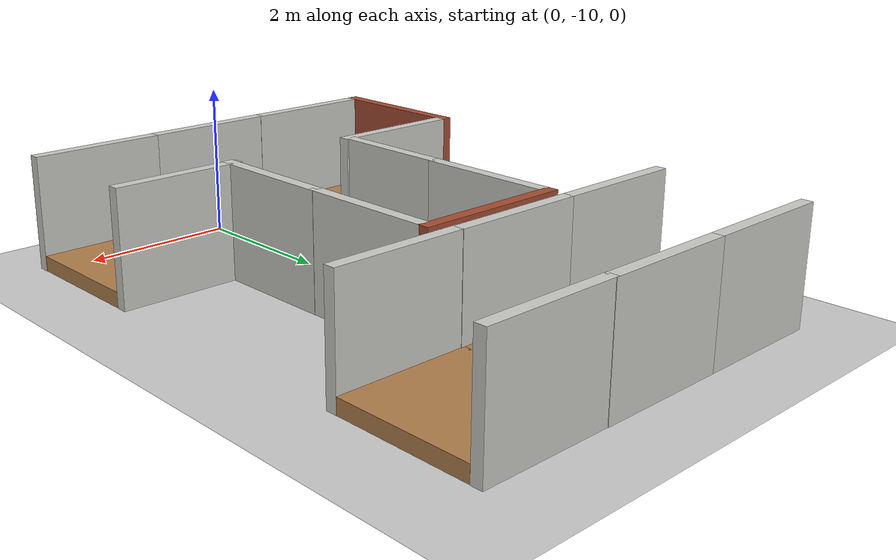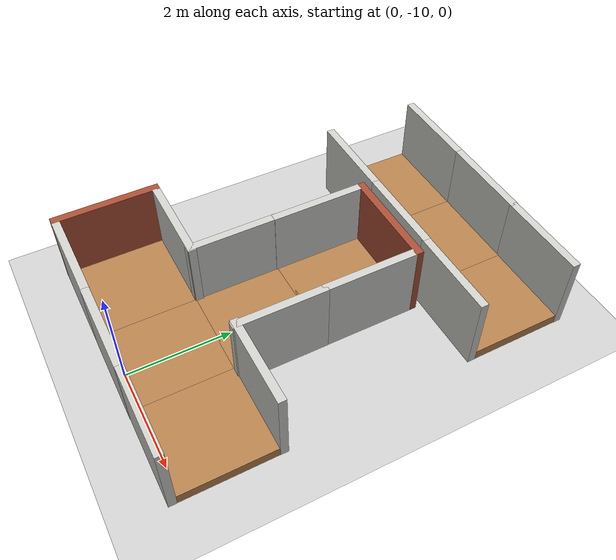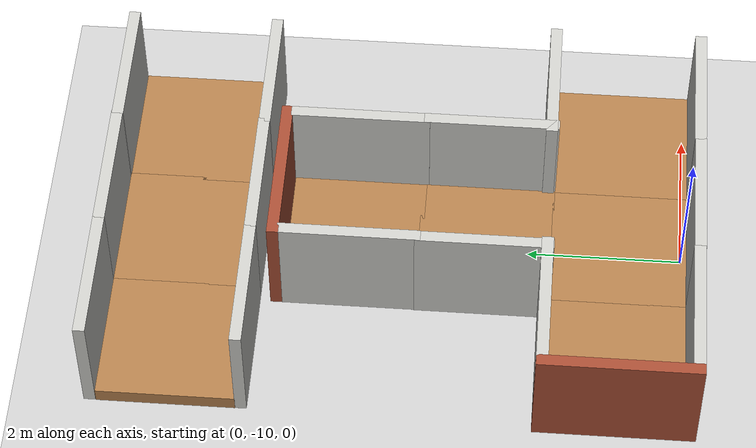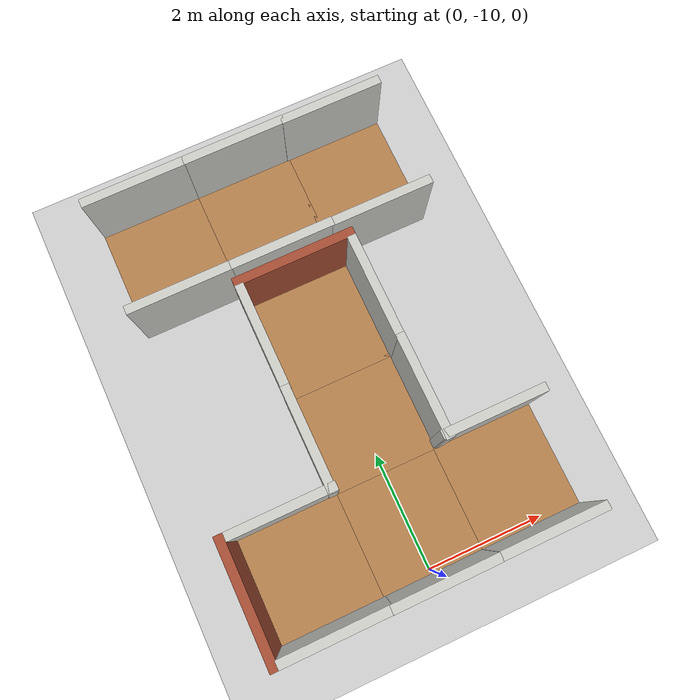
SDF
<sdf version="1.6">
 <world name="default">
  <model name="ground_plane">
   <static>1</static>
   <link name="link">
    <collision name="collision">
     <geometry><plane><normal>0 0 1</normal><size>100 100</size></plane></geometry>
     <surface><friction><ode><mu>100</mu><mu2>50</mu2></ode></friction></surface>
    </collision>
    <visual name="visual">
     <cast_shadows>0</cast_shadows>
     <geometry><plane><normal>0 0 1</normal><size>100 100</size></plane></geometry>
     <material>
      <script><uri>file://media/materials/scripts/gazebo.material</uri><name>Gazebo/Grey</name></script>
     </material>
    </visual>
   </link>
  </model>
  <model name="nerve_end_clone">
   <pose>0.033954 -5.68438 0 0 -0 2e-06</pose>
   <link name="Wall_0">
    <collision name="Wall_0_Collision">
     <geometry><box><size>1.76 1.75 0.2</size></box></geometry>
     <pose>0 0 0.1 0 -0 0</pose>
    </collision>
    <visual name="Wall_0_Visual">
     <pose>0 0 0.1 0 -0 0</pose>
     <geometry><box><size>1.76 1.75 0.2</size></box></geometry>
     <material>
      <script><uri>file://media/materials/scripts/gazebo.material</uri><name>Gazebo/Wood</name></script>
      <ambient>1 0.764706 0.305882 1</ambient>
     </material>
    </visual>
    <pose>-0.009 -0.064 0 0 -0 0</pose>
   </link>
   <link name="Wall_2">
    <collision name="Wall_2_Collision">
     <geometry><box><size>1.8 0.15 1.5</size></box></geometry>
     <pose>0 0 0.75 0 -0 0</pose>
    </collision>
    <visual name="Wall_2_Visual">
     <pose>0 0 0.75 0 -0 0</pose>
     <geometry><box><size>1.8 0.15 1.5</size></box></geometry>
     <material>
      <script><uri>file://media/materials/scripts/gazebo.material</uri><name>Gazebo/CeilingTiled</name></script>
      <ambient>1 0.764706 0.305882 1</ambient>
     </material>
    </visual>
    <pose>-0.95 -0.065 0 0 0 -1.5708</pose>
   </link>
   <link name="Wall_4">
    <collision name="Wall_4_Collision">
     <geometry><box><size>1.8 0.15 1.5</size></box></geometry>
     <pose>0 0 0.75 0 -0 0</pose>
    </collision>
    <visual name="Wall_4_Visual">
     <pose>0 0 0.75 0 -0 0</pose>
     <geometry><box><size>1.8 0.15 1.5</size></box></geometry>
     <material>
      <script><uri>file://media/materials/scripts/gazebo.material</uri><name>Gazebo/CeilingTiled</name></script>
      <ambient>1 0.764706 0.305882 1</ambient>
     </material>
    </visual>
    <pose>0.95 -0.065 0 0 0 -1.5708</pose>
   </link>
   <link name="Wall_6">
    <collision name="Wall_6_Collision">
     <geometry><box><size>2.05 0.15 1.5</size></box></geometry>
     <pose>0 0 0.75 0 -0 0</pose>
    </collision>
    <visual name="Wall_6_Visual">
     <pose>0 0 0.75 0 -0 0</pose>
     <geometry><box><size>2.05 0.15 1.5</size></box></geometry>
     <material>
      <script><uri>file://media/materials/scripts/gazebo.material</uri><name>Gazebo/Bricks</name></script>
      <ambient>0.996078 0.47451 0.0196078 1</ambient>
     </material>
    </visual>
    <pose>0 0.89 0 0 -0 0</pose>
   </link>
   <static>1</static>
  </model>
  <model name="nerve_straight">
   <pose>-1.7845 -3.55503 0 0 0 -1.5708</pose>
   <link name="Wall_0">
    <collision name="Wall_0_Collision">
     <geometry><box><size>1.76 1.75 0.2</size></box></geometry>
     <pose>0 0 0.1 0 -0 0</pose>
    </collision>
    <visual name="Wall_0_Visual">
     <pose>0 0 0.1 0 -0 0</pose>
     <geometry><box><size>1.76 1.75 0.2</size></box></geometry>
     <material>
      <script><uri>file://media/materials/scripts/gazebo.material</uri><name>Gazebo/Wood</name></script>
      <ambient>1 0.764706 0.305882 1</ambient>
     </material>
    </visual>
    <pose>0.005 -0.002 0 0 -0 3.14159</pose>
   </link>
   <link name="Wall_2">
    <collision name="Wall_2_Collision">
     <geometry><box><size>1.75 0.15 1.5</size></box></geometry>
     <pose>0 0 0.75 0 -0 0</pose>
    </collision>
    <visual name="Wall_2_Visual">
     <pose>0 0 0.75 0 -0 0</pose>
     <geometry><box><size>1.75 0.15 1.5</size></box></geometry>
     <material>
      <script><uri>file://media/materials/scripts/gazebo.material</uri><name>Gazebo/CeilingTiled</name></script>
      <ambient>1 0.764706 0.305882 1</ambient>
     </material>
    </visual>
    <pose>-0.955 0.002 0 0 0 -1.5708</pose>
   </link>
   <link name="Wall_4">
    <collision name="Wall_4_Collision">
     <geometry><box><size>1.75 0.15 1.5</size></box></geometry>
     <pose>0 0 0.75 0 -0 0</pose>
    </collision>
    <visual name="Wall_4_Visual">
     <pose>0 0 0.75 0 -0 0</pose>
     <geometry><box><size>1.75 0.15 1.5</size></box></geometry>
     <material>
      <script><uri>file://media/materials/scripts/gazebo.material</uri><name>Gazebo/CeilingTiled</name></script>
      <ambient>1 0.764706 0.305882 1</ambient>
     </material>
    </visual>
    <pose>0.955 0.002 0 0 0 -1.5708</pose>
   </link>
   <static>1</static>
  </model>
  <model name="nerve_straight_clone">
   <pose>-0.046085 -3.55479 0 0 0 -1.5708</pose>
   <link name="Wall_0">
    <collision name="Wall_0_Collision">
     <geometry><box><size>1.76 1.75 0.2</size></box></geometry>
     <pose>0 0 0.1 0 -0 0</pose>
    </collision>
    <visual name="Wall_0_Visual">
     <pose>0 0 0.1 0 -0 0</pose>
     <geometry><box><size>1.76 1.75 0.2</size></box></geometry>
     <material>
      <script><uri>file://media/materials/scripts/gazebo.material</uri><name>Gazebo/Wood</name></script>
      <ambient>1 0.764706 0.305882 1</ambient>
     </material>
    </visual>
    <pose>0.005 -0.002 0 0 -0 3.14159</pose>
   </link>
   <link name="Wall_2">
    <collision name="Wall_2_Collision">
     <geometry><box><size>1.75 0.15 1.5</size></box></geometry>
     <pose>0 0 0.75 0 -0 0</pose>
    </collision>
    <visual name="Wall_2_Visual">
     <pose>0 0 0.75 0 -0 0</pose>
     <geometry><box><size>1.75 0.15 1.5</size></box></geometry>
     <material>
      <script><uri>file://media/materials/scripts/gazebo.material</uri><name>Gazebo/CeilingTiled</name></script>
      <ambient>1 0.764706 0.305882 1</ambient>
     </material>
    </visual>
    <pose>-0.955 0.002 0 0 0 -1.5708</pose>
   </link>
   <link name="Wall_4">
    <collision name="Wall_4_Collision">
     <geometry><box><size>1.75 0.15 1.5</size></box></geometry>
     <pose>0 0 0.75 0 -0 0</pose>
    </collision>
    <visual name="Wall_4_Visual">
     <pose>0 0 0.75 0 -0 0</pose>
     <geometry><box><size>1.75 0.15 1.5</size></box></geometry>
     <material>
      <script><uri>file://media/materials/scripts/gazebo.material</uri><name>Gazebo/CeilingTiled</name></script>
      <ambient>1 0.764706 0.305882 1</ambient>
     </material>
    </visual>
    <pose>0.955 0.002 0 0 0 -1.5708</pose>
   </link>
   <static>1</static>
  </model>
  <model name="nerve_onewall_clone">
   <pose>0.01829 -9.25795 0 0 -0 1.57079</pose>
   <link name="Wall_0">
    <collision name="Wall_0_Collision">
     <geometry><box><size>1.76 1.75 0.2</size></box></geometry>
     <pose>0 0 0.1 0 -0 0</pose>
    </collision>
    <visual name="Wall_0_Visual">
     <pose>0 0 0.1 0 -0 0</pose>
     <geometry><box><size>1.76 1.75 0.2</size></box></geometry>
     <material>
      <script><uri>file://media/materials/scripts/gazebo.material</uri><name>Gazebo/Wood</name></script>
      <ambient>1 0.764706 0.305882 1</ambient>
     </material>
    </visual>
    <pose>0.0775 -0.002 0 0 -0 3.14159</pose>
   </link>
   <link name="Wall_2">
    <collision name="Wall_2_Collision">
     <geometry><box><size>1.75 0.15 1.5</size></box></geometry>
     <pose>0 0 0.75 0 -0 0</pose>
    </collision>
    <visual name="Wall_2_Visual">
     <pose>0 0 0.75 0 -0 0</pose>
     <geometry><box><size>1.75 0.15 1.5</size></box></geometry>
     <material>
      <script><uri>file://media/materials/scripts/gazebo.material</uri><name>Gazebo/CeilingTiled</name></script>
      <ambient>1 0.764706 0.305882 1</ambient>
     </material>
    </visual>
    <pose>-0.8825 0.002 0 0 0 -1.5708</pose>
   </link>
   <static>1</static>
  </model>
  <model name="nerve_end_clone_clone_clone">
   <pose>-1.78823 -9.18731 0 0 -0 1.5708</pose>
   <link name="Wall_0">
    <collision name="Wall_0_Collision">
     <geometry><box><size>1.76 1.75 0.2</size></box></geometry>
     <pose>0 0 0.1 0 -0 0</pose>
    </collision>
    <visual name="Wall_0_Visual">
     <pose>0 0 0.1 0 -0 0</pose>
     <geometry><box><size>1.76 1.75 0.2</size></box></geometry>
     <material>
      <script><uri>file://media/materials/scripts/gazebo.material</uri><name>Gazebo/Wood</name></script>
      <ambient>1 0.764706 0.305882 1</ambient>
     </material>
    </visual>
    <pose>-0.009 -0.064 0 0 -0 0</pose>
   </link>
   <link name="Wall_2">
    <collision name="Wall_2_Collision">
     <geometry><box><size>1.8 0.15 1.5</size></box></geometry>
     <pose>0 0 0.75 0 -0 0</pose>
    </collision>
    <visual name="Wall_2_Visual">
     <pose>0 0 0.75 0 -0 0</pose>
     <geometry><box><size>1.8 0.15 1.5</size></box></geometry>
     <material>
      <script><uri>file://media/materials/scripts/gazebo.material</uri><name>Gazebo/CeilingTiled</name></script>
      <ambient>1 0.764706 0.305882 1</ambient>
     </material>
    </visual>
    <pose>-0.95 -0.065 0 0 0 -1.5708</pose>
   </link>
   <link name="Wall_4">
    <collision name="Wall_4_Collision">
     <geometry><box><size>1.8 0.15 1.5</size></box></geometry>
     <pose>0 0 0.75 0 -0 0</pose>
    </collision>
    <visual name="Wall_4_Visual">
     <pose>0 0 0.75 0 -0 0</pose>
     <geometry><box><size>1.8 0.15 1.5</size></box></geometry>
     <material>
      <script><uri>file://media/materials/scripts/gazebo.material</uri><name>Gazebo/CeilingTiled</name></script>
      <ambient>1 0.764706 0.305882 1</ambient>
     </material>
    </visual>
    <pose>0.95 -0.065 0 0 0 -1.5708</pose>
   </link>
   <link name="Wall_6">
    <collision name="Wall_6_Collision">
     <geometry><box><size>2.05 0.15 1.5</size></box></geometry>
     <pose>0 0 0.75 0 -0 0</pose>
    </collision>
    <visual name="Wall_6_Visual">
     <pose>0 0 0.75 0 -0 0</pose>
     <geometry><box><size>2.05 0.15 1.5</size></box></geometry>
     <material>
      <script><uri>file://media/materials/scripts/gazebo.material</uri><name>Gazebo/Bricks</name></script>
      <ambient>0.996078 0.47451 0.0196078 1</ambient>
     </material>
    </visual>
    <pose>0 0.89 0 0 -0 0</pose>
   </link>
   <static>1</static>
  </model>
  <model name="nerve_straight_clone_clone">
   <pose>1.65819 -3.56106 0 0 0 -1.5708</pose>
   <link name="Wall_0">
    <collision name="Wall_0_Collision">
     <geometry><box><size>1.76 1.75 0.2</size></box></geometry>
     <pose>0 0 0.1 0 -0 0</pose>
    </collision>
    <visual name="Wall_0_Visual">
     <pose>0 0 0.1 0 -0 0</pose>
     <geometry><box><size>1.76 1.75 0.2</size></box></geometry>
     <material>
      <script><uri>file://media/materials/scripts/gazebo.material</uri><name>Gazebo/Wood</name></script>
      <ambient>1 0.764706 0.305882 1</ambient>
     </material>
    </visual>
    <pose>0.005 -0.002 0 0 -0 3.14159</pose>
   </link>
   <link name="Wall_2">
    <collision name="Wall_2_Collision">
     <geometry><box><size>1.75 0.15 1.5</size></box></geometry>
     <pose>0 0 0.75 0 -0 0</pose>
    </collision>
    <visual name="Wall_2_Visual">
     <pose>0 0 0.75 0 -0 0</pose>
     <geometry><box><size>1.75 0.15 1.5</size></box></geometry>
     <material>
      <script><uri>file://media/materials/scripts/gazebo.material</uri><name>Gazebo/CeilingTiled</name></script>
      <ambient>1 0.764706 0.305882 1</ambient>
     </material>
    </visual>
    <pose>-0.955 0.002 0 0 0 -1.5708</pose>
   </link>
   <link name="Wall_4">
    <collision name="Wall_4_Collision">
     <geometry><box><size>1.75 0.15 1.5</size></box></geometry>
     <pose>0 0 0.75 0 -0 0</pose>
    </collision>
    <visual name="Wall_4_Visual">
     <pose>0 0 0.75 0 -0 0</pose>
     <geometry><box><size>1.75 0.15 1.5</size></box></geometry>
     <material>
      <script><uri>file://media/materials/scripts/gazebo.material</uri><name>Gazebo/CeilingTiled</name></script>
      <ambient>1 0.764706 0.305882 1</ambient>
     </material>
    </visual>
    <pose>0.955 0.002 0 0 0 -1.5708</pose>
   </link>
   <static>1</static>
  </model>
  <model name="nerve_straight_clone_0_clone_1_clone_0_clone_4">
   <pose>1.75603 -9.18083 0 0 0 -1.5708</pose>
   <link name="Wall_0">
    <collision name="Wall_0_Collision">
     <geometry><box><size>1.76 1.75 0.2</size></box></geometry>
     <pose>0 0 0.1 0 -0 0</pose>
    </collision>
    <visual name="Wall_0_Visual">
     <pose>0 0 0.1 0 -0 0</pose>
     <geometry><box><size>1.76 1.75 0.2</size></box></geometry>
     <material>
      <script><uri>file://media/materials/scripts/gazebo.material</uri><name>Gazebo/Wood</name></script>
      <ambient>1 0.764706 0.305882 1</ambient>
     </material>
    </visual>
    <pose>0.005 -0.002 0 0 -0 3.14159</pose>
   </link>
   <link name="Wall_2">
    <collision name="Wall_2_Collision">
     <geometry><box><size>1.75 0.15 1.5</size></box></geometry>
     <pose>0 0 0.75 0 -0 0</pose>
    </collision>
    <visual name="Wall_2_Visual">
     <pose>0 0 0.75 0 -0 0</pose>
     <geometry><box><size>1.75 0.15 1.5</size></box></geometry>
     <material>
      <script><uri>file://media/materials/scripts/gazebo.material</uri><name>Gazebo/CeilingTiled</name></script>
      <ambient>1 0.764706 0.305882 1</ambient>
     </material>
    </visual>
    <pose>-0.955 0.002 0 0 0 -1.5708</pose>
   </link>
   <link name="Wall_4">
    <collision name="Wall_4_Collision">
     <geometry><box><size>1.75 0.15 1.5</size></box></geometry>
     <pose>0 0 0.75 0 -0 0</pose>
    </collision>
    <visual name="Wall_4_Visual">
     <pose>0 0 0.75 0 -0 0</pose>
     <geometry><box><size>1.75 0.15 1.5</size></box></geometry>
     <material>
      <script><uri>file://media/materials/scripts/gazebo.material</uri><name>Gazebo/CeilingTiled</name></script>
      <ambient>1 0.764706 0.305882 1</ambient>
     </material>
    </visual>
    <pose>0.955 0.002 0 0 0 -1.5708</pose>
   </link>
   <static>1</static>
  </model>
  <model name="nerve_straight_clone_0_clone_clone_clone">
   <pose>0.033036 -7.44606 0 0 -0 3.14159</pose>
   <link name="Wall_0">
    <collision name="Wall_0_Collision">
     <geometry><box><size>1.76 1.75 0.2</size></box></geometry>
     <pose>0 0 0.1 0 -0 0</pose>
    </collision>
    <visual name="Wall_0_Visual">
     <pose>0 0 0.1 0 -0 0</pose>
     <geometry><box><size>1.76 1.75 0.2</size></box></geometry>
     <material>
      <script><uri>file://media/materials/scripts/gazebo.material</uri><name>Gazebo/Wood</name></script>
      <ambient>1 0.764706 0.305882 1</ambient>
     </material>
    </visual>
    <pose>0.005 -0.002 0 0 -0 3.14159</pose>
   </link>
   <link name="Wall_2">
    <collision name="Wall_2_Collision">
     <geometry><box><size>1.75 0.15 1.5</size></box></geometry>
     <pose>0 0 0.75 0 -0 0</pose>
    </collision>
    <visual name="Wall_2_Visual">
     <pose>0 0 0.75 0 -0 0</pose>
     <geometry><box><size>1.75 0.15 1.5</size></box></geometry>
     <material>
      <script><uri>file://media/materials/scripts/gazebo.material</uri><name>Gazebo/CeilingTiled</name></script>
      <ambient>1 0.764706 0.305882 1</ambient>
     </material>
    </visual>
    <pose>-0.955 0.002 0 0 0 -1.5708</pose>
   </link>
   <link name="Wall_4">
    <collision name="Wall_4_Collision">
     <geometry><box><size>1.75 0.15 1.5</size></box></geometry>
     <pose>0 0 0.75 0 -0 0</pose>
    </collision>
    <visual name="Wall_4_Visual">
     <pose>0 0 0.75 0 -0 0</pose>
     <geometry><box><size>1.75 0.15 1.5</size></box></geometry>
     <material>
      <script><uri>file://media/materials/scripts/gazebo.material</uri><name>Gazebo/CeilingTiled</name></script>
      <ambient>1 0.764706 0.305882 1</ambient>
     </material>
    </visual>
    <pose>0.955 0.002 0 0 0 -1.5708</pose>
   </link>
   <static>1</static>
  </model>
 </world>
</sdf>
